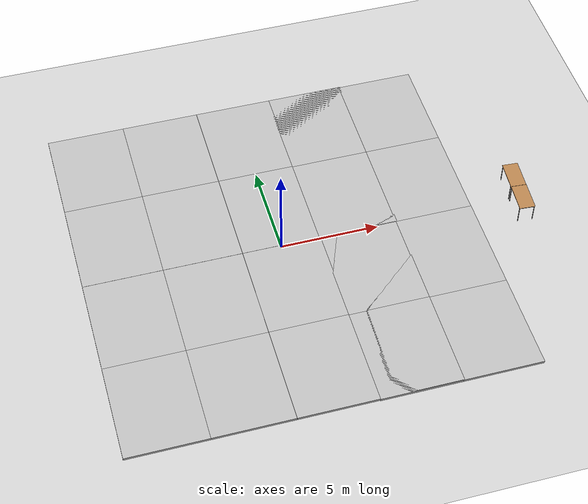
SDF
<sdf version="1.7">
 <world name="default">
  <light name="sun" type="directional">
   <pose>0 0 10 0 -0 0</pose>
   <diffuse>0.8 0.8 0.8 1</diffuse>
   <specular>0.2 0.2 0.2 1</specular>
   <attenuation>
    <range>1000</range>
    <constant>0.9</constant>
    <linear>0.01</linear>
    <quadratic>0.001</quadratic>
   </attenuation>
   <direction>-0.5 0.1 -0.9</direction>
   <spot><inner_angle>0</inner_angle><outer_angle>0</outer_angle><falloff>0</falloff></spot>
  </light>
  <model name="ground_plane">
   <static>1</static>
   <link name="link">
    <collision name="collision">
     <geometry><plane><normal>0 0 1</normal><size>100 100</size></plane></geometry>
     <surface>
      <contact><collide_bitmask>65535</collide_bitmask></contact>
      <friction><ode><mu>100</mu><mu2>50</mu2></ode></friction>
     </surface>
    </collision>
    <visual name="visual">
     <cast_shadows>0</cast_shadows>
     <geometry><plane><normal>0 0 1</normal><size>100 100</size></plane></geometry>
     <material>
      <script><uri>file://media/materials/scripts/gazebo.material</uri><name>Gazebo/Grey</name></script>
     </material>
    </visual>
   </link>
  </model>
  <gravity>0 0 -9.8</gravity>
  <magnetic_field>6e-06 2.3e-05 -4.2e-05</magnetic_field>
  <atmosphere type="adiabatic"/>
  <physics type="ode">
   <max_step_size>0.001</max_step_size>
   <real_time_factor>1</real_time_factor>
   <real_time_update_rate>1000</real_time_update_rate>
  </physics>
  <scene><ambient>0.4 0.4 0.4 1</ambient><background>0.7 0.7 0.7 1</background><shadows>1</shadows></scene>
  <audio><device>default</device></audio>
  <spherical_coordinates>
   <surface_model>EARTH_WGS84</surface_model>
   <latitude_deg>0</latitude_deg>
   <longitude_deg>0</longitude_deg>
   <elevation>0</elevation>
   <heading_deg>0</heading_deg>
  </spherical_coordinates>
  <model name="mud_box">
   <static>1</static>
   <link name="link">
    <collision name="collision"><geometry><box><size>8 10 0.2</size></box></geometry></collision>
    <visual name="visual_1">
     <pose>-2 2.5 0 0 -0 0</pose>
     <cast_shadows>0</cast_shadows>
     <geometry><box><size>4 5 0.2</size></box></geometry>
     <material>
      <script>
       <uri>model://mud_box/materials/scripts</uri>
       <uri>model://mud_box/materials/textures</uri>
       <name>vrc/mud</name>
      </script>
     </material>
    </visual>
    <visual name="visual_2">
     <pose>2 2.5 0 0 -0 0</pose>
     <cast_shadows>0</cast_shadows>
     <geometry><box><size>4 5 0.2</size></box></geometry>
     <material>
      <script>
       <uri>model://mud_box/materials/scripts</uri>
       <uri>model://mud_box/materials/textures</uri>
       <name>vrc/mud</name>
      </script>
     </material>
    </visual>
    <visual name="visual_3">
     <pose>2 -2.5 0 0 -0 0</pose>
     <cast_shadows>0</cast_shadows>
     <geometry><box><size>4 5 0.2</size></box></geometry>
     <material>
      <script>
       <uri>model://mud_box/materials/scripts</uri>
       <uri>model://mud_box/materials/textures</uri>
       <name>vrc/mud</name>
      </script>
     </material>
    </visual>
    <visual name="visual_4">
     <pose>-2 -2.5 0 0 -0 0</pose>
     <cast_shadows>0</cast_shadows>
     <geometry><box><size>4 5 0.2</size></box></geometry>
     <material>
      <script>
       <uri>model://mud_box/materials/scripts</uri>
       <uri>model://mud_box/materials/textures</uri>
       <name>vrc/mud</name>
      </script>
     </material>
    </visual>
   </link>
   <pose>-5.97515 -4.9687 0 0 -0 0</pose>
  </model>
  <model name="mud_box_0">
   <static>1</static>
   <link name="link">
    <collision name="collision"><geometry><box><size>8 10 0.2</size></box></geometry></collision>
    <visual name="visual_1">
     <pose>-2 2.5 0 0 -0 0</pose>
     <cast_shadows>0</cast_shadows>
     <geometry><box><size>4 5 0.2</size></box></geometry>
     <material>
      <script>
       <uri>model://mud_box/materials/scripts</uri>
       <uri>model://mud_box/materials/textures</uri>
       <name>vrc/mud</name>
      </script>
     </material>
    </visual>
    <visual name="visual_2">
     <pose>2 2.5 0 0 -0 0</pose>
     <cast_shadows>0</cast_shadows>
     <geometry><box><size>4 5 0.2</size></box></geometry>
     <material>
      <script>
       <uri>model://mud_box/materials/scripts</uri>
       <uri>model://mud_box/materials/textures</uri>
       <name>vrc/mud</name>
      </script>
     </material>
    </visual>
    <visual name="visual_3">
     <pose>2 -2.5 0 0 -0 0</pose>
     <cast_shadows>0</cast_shadows>
     <geometry><box><size>4 5 0.2</size></box></geometry>
     <material>
      <script>
       <uri>model://mud_box/materials/scripts</uri>
       <uri>model://mud_box/materials/textures</uri>
       <name>vrc/mud</name>
      </script>
     </material>
    </visual>
    <visual name="visual_4">
     <pose>-2 -2.5 0 0 -0 0</pose>
     <cast_shadows>0</cast_shadows>
     <geometry><box><size>4 5 0.2</size></box></geometry>
     <material>
      <script>
       <uri>model://mud_box/materials/scripts</uri>
       <uri>model://mud_box/materials/textures</uri>
       <name>vrc/mud</name>
      </script>
     </material>
    </visual>
   </link>
   <pose>-5.97515 5.03381 0 0 -0 0</pose>
  </model>
  <model name="mud_box_1">
   <static>1</static>
   <link name="link">
    <collision name="collision"><geometry><box><size>8 10 0.2</size></box></geometry></collision>
    <visual name="visual_1">
     <pose>-2 2.5 0 0 -0 0</pose>
     <cast_shadows>0</cast_shadows>
     <geometry><box><size>4 5 0.2</size></box></geometry>
     <material>
      <script>
       <uri>model://mud_box/materials/scripts</uri>
       <uri>model://mud_box/materials/textures</uri>
       <name>vrc/mud</name>
      </script>
     </material>
    </visual>
    <visual name="visual_2">
     <pose>2 2.5 0 0 -0 0</pose>
     <cast_shadows>0</cast_shadows>
     <geometry><box><size>4 5 0.2</size></box></geometry>
     <material>
      <script>
       <uri>model://mud_box/materials/scripts</uri>
       <uri>model://mud_box/materials/textures</uri>
       <name>vrc/mud</name>
      </script>
     </material>
    </visual>
    <visual name="visual_3">
     <pose>2 -2.5 0 0 -0 0</pose>
     <cast_shadows>0</cast_shadows>
     <geometry><box><size>4 5 0.2</size></box></geometry>
     <material>
      <script>
       <uri>model://mud_box/materials/scripts</uri>
       <uri>model://mud_box/materials/textures</uri>
       <name>vrc/mud</name>
      </script>
     </material>
    </visual>
    <visual name="visual_4">
     <pose>-2 -2.5 0 0 -0 0</pose>
     <cast_shadows>0</cast_shadows>
     <geometry><box><size>4 5 0.2</size></box></geometry>
     <material>
      <script>
       <uri>model://mud_box/materials/scripts</uri>
       <uri>model://mud_box/materials/textures</uri>
       <name>vrc/mud</name>
      </script>
     </material>
    </visual>
   </link>
   <pose>2.03167 -4.9687 0 0 -0 0</pose>
  </model>
  <model name="mud_box_2">
   <static>1</static>
   <link name="link">
    <collision name="collision"><geometry><box><size>8 10 0.2</size></box></geometry></collision>
    <visual name="visual_1">
     <pose>-2 2.5 0 0 -0 0</pose>
     <cast_shadows>0</cast_shadows>
     <geometry><box><size>4 5 0.2</size></box></geometry>
     <material>
      <script>
       <uri>model://mud_box/materials/scripts</uri>
       <uri>model://mud_box/materials/textures</uri>
       <name>vrc/mud</name>
      </script>
     </material>
    </visual>
    <visual name="visual_2">
     <pose>2 2.5 0 0 -0 0</pose>
     <cast_shadows>0</cast_shadows>
     <geometry><box><size>4 5 0.2</size></box></geometry>
     <material>
      <script>
       <uri>model://mud_box/materials/scripts</uri>
       <uri>model://mud_box/materials/textures</uri>
       <name>vrc/mud</name>
      </script>
     </material>
    </visual>
    <visual name="visual_3">
     <pose>2 -2.5 0 0 -0 0</pose>
     <cast_shadows>0</cast_shadows>
     <geometry><box><size>4 5 0.2</size></box></geometry>
     <material>
      <script>
       <uri>model://mud_box/materials/scripts</uri>
       <uri>model://mud_box/materials/textures</uri>
       <name>vrc/mud</name>
      </script>
     </material>
    </visual>
    <visual name="visual_4">
     <pose>-2 -2.5 0 0 -0 0</pose>
     <cast_shadows>0</cast_shadows>
     <geometry><box><size>4 5 0.2</size></box></geometry>
     <material>
      <script>
       <uri>model://mud_box/materials/scripts</uri>
       <uri>model://mud_box/materials/textures</uri>
       <name>vrc/mud</name>
      </script>
     </material>
    </visual>
   </link>
   <pose>2.03167 5.03381 0 0 -0 0</pose>
  </model>
  <model name="mud_box_3">
   <static>1</static>
   <link name="link">
    <collision name="collision"><geometry><box><size>8 10 0.2</size></box></geometry></collision>
    <visual name="visual_1">
     <pose>-2 2.5 0 0 -0 0</pose>
     <cast_shadows>0</cast_shadows>
     <geometry><box><size>4 5 0.2</size></box></geometry>
     <material>
      <script>
       <uri>model://mud_box/materials/scripts</uri>
       <uri>model://mud_box/materials/textures</uri>
       <name>vrc/mud</name>
      </script>
     </material>
    </visual>
    <visual name="visual_2">
     <pose>2 2.5 0 0 -0 0</pose>
     <cast_shadows>0</cast_shadows>
     <geometry><box><size>4 5 0.2</size></box></geometry>
     <material>
      <script>
       <uri>model://mud_box/materials/scripts</uri>
       <uri>model://mud_box/materials/textures</uri>
       <name>vrc/mud</name>
      </script>
     </material>
    </visual>
    <visual name="visual_3">
     <pose>2 -2.5 0 0 -0 0</pose>
     <cast_shadows>0</cast_shadows>
     <geometry><box><size>4 5 0.2</size></box></geometry>
     <material>
      <script>
       <uri>model://mud_box/materials/scripts</uri>
       <uri>model://mud_box/materials/textures</uri>
       <name>vrc/mud</name>
      </script>
     </material>
    </visual>
    <visual name="visual_4">
     <pose>-2 -2.5 0 0 -0 0</pose>
     <cast_shadows>0</cast_shadows>
     <geometry><box><size>4 5 0.2</size></box></geometry>
     <material>
      <script>
       <uri>model://mud_box/materials/scripts</uri>
       <uri>model://mud_box/materials/textures</uri>
       <name>vrc/mud</name>
      </script>
     </material>
    </visual>
   </link>
   <pose>5.97166 -4.99517 0 0 -0 0</pose>
  </model>
  <model name="mud_box_4">
   <static>1</static>
   <link name="link">
    <collision name="collision"><geometry><box><size>8 10 0.2</size></box></geometry></collision>
    <visual name="visual_1">
     <pose>-2 2.5 0 0 -0 0</pose>
     <cast_shadows>0</cast_shadows>
     <geometry><box><size>4 5 0.2</size></box></geometry>
     <material>
      <script>
       <uri>model://mud_box/materials/scripts</uri>
       <uri>model://mud_box/materials/textures</uri>
       <name>vrc/mud</name>
      </script>
     </material>
    </visual>
    <visual name="visual_2">
     <pose>2 2.5 0 0 -0 0</pose>
     <cast_shadows>0</cast_shadows>
     <geometry><box><size>4 5 0.2</size></box></geometry>
     <material>
      <script>
       <uri>model://mud_box/materials/scripts</uri>
       <uri>model://mud_box/materials/textures</uri>
       <name>vrc/mud</name>
      </script>
     </material>
    </visual>
    <visual name="visual_3">
     <pose>2 -2.5 0 0 -0 0</pose>
     <cast_shadows>0</cast_shadows>
     <geometry><box><size>4 5 0.2</size></box></geometry>
     <material>
      <script>
       <uri>model://mud_box/materials/scripts</uri>
       <uri>model://mud_box/materials/textures</uri>
       <name>vrc/mud</name>
      </script>
     </material>
    </visual>
    <visual name="visual_4">
     <pose>-2 -2.5 0 0 -0 0</pose>
     <cast_shadows>0</cast_shadows>
     <geometry><box><size>4 5 0.2</size></box></geometry>
     <material>
      <script>
       <uri>model://mud_box/materials/scripts</uri>
       <uri>model://mud_box/materials/textures</uri>
       <name>vrc/mud</name>
      </script>
     </material>
    </visual>
   </link>
   <pose>5.96532 4.99753 0 0 -0 0</pose>
  </model>
  <model name="table">
   <static>1</static>
   <link name="link">
    <collision name="surface">
     <pose>0 0 1 0 -0 0</pose>
     <geometry><box><size>1.5 0.8 0.03</size></box></geometry>
     <surface><friction><ode><mu>0.6</mu><mu2>0.6</mu2></ode></friction></surface>
    </collision>
    <visual name="visual1">
     <pose>0 0 1 0 -0 0</pose>
     <geometry><box><size>1.5 0.8 0.03</size></box></geometry>
     <material>
      <script><uri>file://media/materials/scripts/gazebo.material</uri><name>Gazebo/Wood</name></script>
     </material>
    </visual>
    <collision name="front_left_leg">
     <pose>0.68 0.38 0.5 0 -0 0</pose>
     <geometry><cylinder><radius>0.02</radius><length>1</length></cylinder></geometry>
    </collision>
    <visual name="front_left_leg">
     <pose>0.68 0.38 0.5 0 -0 0</pose>
     <geometry><cylinder><radius>0.02</radius><length>1</length></cylinder></geometry>
     <material>
      <script><uri>file://media/materials/scripts/gazebo.material</uri><name>Gazebo/Grey</name></script>
     </material>
    </visual>
    <collision name="front_right_leg">
     <pose>0.68 -0.38 0.5 0 -0 0</pose>
     <geometry><cylinder><radius>0.02</radius><length>1</length></cylinder></geometry>
    </collision>
    <visual name="front_right_leg">
     <pose>0.68 -0.38 0.5 0 -0 0</pose>
     <geometry><cylinder><radius>0.02</radius><length>1</length></cylinder></geometry>
     <material>
      <script><uri>file://media/materials/scripts/gazebo.material</uri><name>Gazebo/Grey</name></script>
     </material>
    </visual>
    <collision name="back_right_leg">
     <pose>-0.68 -0.38 0.5 0 -0 0</pose>
     <geometry><cylinder><radius>0.02</radius><length>1</length></cylinder></geometry>
    </collision>
    <visual name="back_right_leg">
     <pose>-0.68 -0.38 0.5 0 -0 0</pose>
     <geometry><cylinder><radius>0.02</radius><length>1</length></cylinder></geometry>
     <material>
      <script><uri>file://media/materials/scripts/gazebo.material</uri><name>Gazebo/Grey</name></script>
     </material>
    </visual>
    <collision name="back_left_leg">
     <pose>-0.68 0.38 0.5 0 -0 0</pose>
     <geometry><cylinder><radius>0.02</radius><length>1</length></cylinder></geometry>
    </collision>
    <visual name="back_left_leg">
     <pose>-0.68 0.38 0.5 0 -0 0</pose>
     <geometry><cylinder><radius>0.02</radius><length>1</length></cylinder></geometry>
     <material>
      <script><uri>file://media/materials/scripts/gazebo.material</uri><name>Gazebo/Grey</name></script>
     </material>
    </visual>
   </link>
   <pose>12.3451 -0.85 0 0 -0 1.5</pose>
  </model>
  <model name="table_0">
   <static>1</static>
   <link name="link">
    <collision name="surface">
     <pose>0 0 1 0 -0 0</pose>
     <geometry><box><size>1.5 0.8 0.03</size></box></geometry>
     <surface><friction><ode><mu>0.6</mu><mu2>0.6</mu2></ode></friction></surface>
    </collision>
    <visual name="visual1">
     <pose>0 0 1 0 -0 0</pose>
     <geometry><box><size>1.5 0.8 0.03</size></box></geometry>
     <material>
      <script><uri>file://media/materials/scripts/gazebo.material</uri><name>Gazebo/Wood</name></script>
     </material>
    </visual>
    <collision name="front_left_leg">
     <pose>0.68 0.38 0.5 0 -0 0</pose>
     <geometry><cylinder><radius>0.02</radius><length>1</length></cylinder></geometry>
    </collision>
    <visual name="front_left_leg">
     <pose>0.68 0.38 0.5 0 -0 0</pose>
     <geometry><cylinder><radius>0.02</radius><length>1</length></cylinder></geometry>
     <material>
      <script><uri>file://media/materials/scripts/gazebo.material</uri><name>Gazebo/Grey</name></script>
     </material>
    </visual>
    <collision name="front_right_leg">
     <pose>0.68 -0.38 0.5 0 -0 0</pose>
     <geometry><cylinder><radius>0.02</radius><length>1</length></cylinder></geometry>
    </collision>
    <visual name="front_right_leg">
     <pose>0.68 -0.38 0.5 0 -0 0</pose>
     <geometry><cylinder><radius>0.02</radius><length>1</length></cylinder></geometry>
     <material>
      <script><uri>file://media/materials/scripts/gazebo.material</uri><name>Gazebo/Grey</name></script>
     </material>
    </visual>
    <collision name="back_right_leg">
     <pose>-0.68 -0.38 0.5 0 -0 0</pose>
     <geometry><cylinder><radius>0.02</radius><length>1</length></cylinder></geometry>
    </collision>
    <visual name="back_right_leg">
     <pose>-0.68 -0.38 0.5 0 -0 0</pose>
     <geometry><cylinder><radius>0.02</radius><length>1</length></cylinder></geometry>
     <material>
      <script><uri>file://media/materials/scripts/gazebo.material</uri><name>Gazebo/Grey</name></script>
     </material>
    </visual>
    <collision name="back_left_leg">
     <pose>-0.68 0.38 0.5 0 -0 0</pose>
     <geometry><cylinder><radius>0.02</radius><length>1</length></cylinder></geometry>
    </collision>
    <visual name="back_left_leg">
     <pose>-0.68 0.38 0.5 0 -0 0</pose>
     <geometry><cylinder><radius>0.02</radius><length>1</length></cylinder></geometry>
     <material>
      <script><uri>file://media/materials/scripts/gazebo.material</uri><name>Gazebo/Grey</name></script>
     </material>
    </visual>
   </link>
   <pose>12.4458 0.655534 0 0 -0 1.5</pose>
  </model>
 </world>
</sdf>
